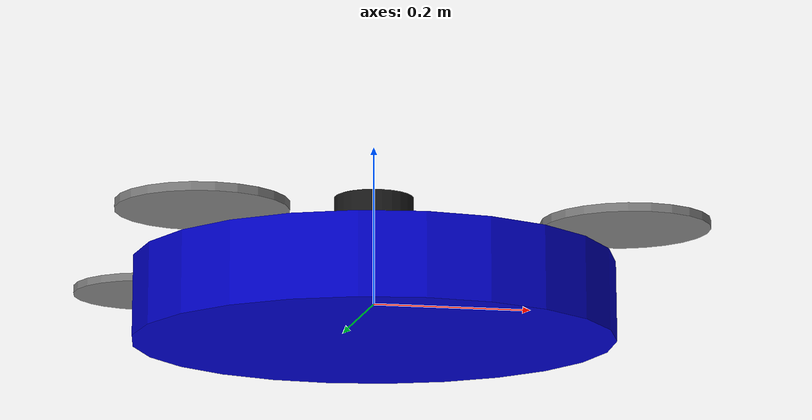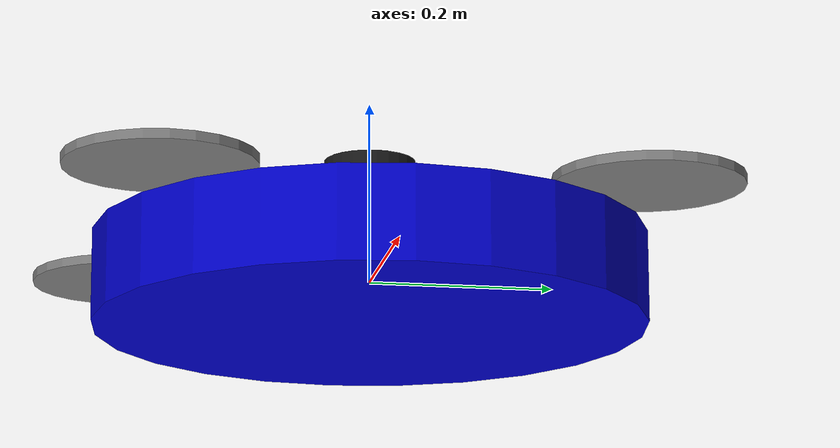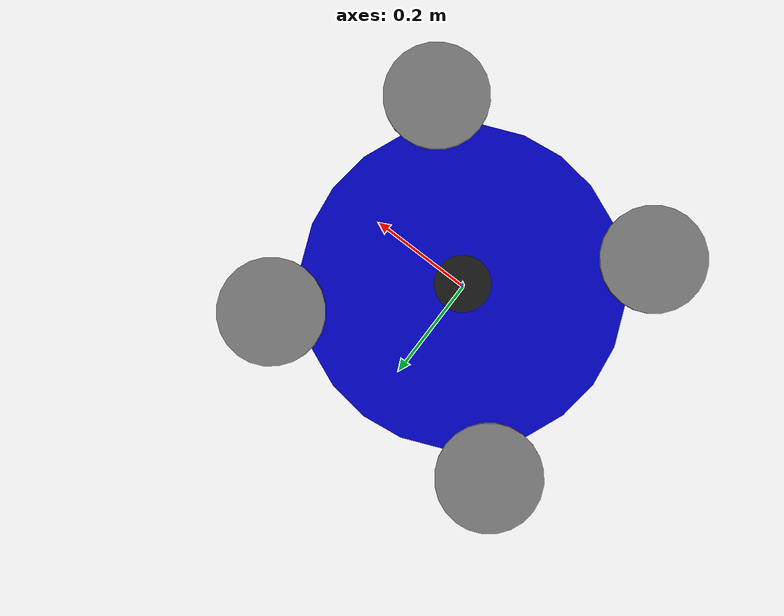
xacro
<?xml version="1.0"?>
<robot xmlns:xacro="http://www.ros.org/wiki/xacro" name="quadrotor">

  <!-- Properties -->
  <xacro:property name="body_radius" value="0.3"/>
  <xacro:property name="body_height" value="0.1"/>
  <xacro:property name="mass" value="1.5"/>
  <xacro:property name="arm_length" value="0.25"/>
  <xacro:property name="rotor_radius" value="0.1"/>
  <xacro:property name="rotor_height" value="0.01"/>

  <!-- Base Link -->
  <link name="base_link">
    <inertial>
      <origin xyz="0 0 0" rpy="0 0 0"/>
      <mass value="${mass}"/>
      <inertia ixx="0.01" ixy="0.0" ixz="0.0" iyy="0.01" iyz="0.0" izz="0.02"/>
    </inertial>

    <visual>
      <origin xyz="0 0 0" rpy="0 0 0"/>
      <geometry>
        <cylinder radius="${body_radius}" length="${body_height}"/>
      </geometry>
      <material name="blue">
        <color rgba="0 0 0.8 1"/>
      </material>
    </visual>

    <collision>
      <origin xyz="0 0 0" rpy="0 0 0"/>
      <geometry>
        <cylinder radius="${body_radius}" length="${body_height}"/>
      </geometry>
    </collision>
  </link>

  <!-- Rotor Macro -->
  <xacro:macro name="rotor" params="prefix x y">
    <link name="${prefix}_rotor">
      <inertial>
        <origin xyz="0 0 0" rpy="0 0 0"/>
        <mass value="0.05"/>
        <inertia ixx="0.0001" ixy="0.0" ixz="0.0" iyy="0.0001" iyz="0.0" izz="0.0002"/>
      </inertial>

      <visual>
        <origin xyz="0 0 0" rpy="0 0 0"/>
        <geometry>
          <cylinder radius="${rotor_radius}" length="${rotor_height}"/>
        </geometry>
        <material name="gray">
          <color rgba="0.5 0.5 0.5 1"/>
        </material>
      </visual>

      <collision>
        <origin xyz="0 0 0" rpy="0 0 0"/>
        <geometry>
          <cylinder radius="${rotor_radius}" length="${rotor_height}"/>
        </geometry>
      </collision>
    </link>

    <joint name="${prefix}_rotor_joint" type="continuous">
      <parent link="base_link"/>
      <child link="${prefix}_rotor"/>
      <origin xyz="${x} ${y} ${body_height/2 + rotor_height/2}" rpy="0 0 0"/>
      <axis xyz="0 0 1"/>
    </joint>
  </xacro:macro>

  <!-- Create four rotors -->
  <xacro:rotor prefix="front_right" x="${arm_length}" y="${-arm_length}"/>
  <xacro:rotor prefix="front_left" x="${arm_length}" y="${arm_length}"/>
  <xacro:rotor prefix="rear_right" x="${-arm_length}" y="${-arm_length}"/>
  <xacro:rotor prefix="rear_left" x="${-arm_length}" y="${arm_length}"/>

  <!-- LiDAR Link -->
  <link name="lidar_link">
    <inertial>
      <origin xyz="0 0 0" rpy="0 0 0"/>
      <mass value="0.83"/>
      <inertia ixx="0.001" ixy="0.0" ixz="0.0" iyy="0.001" iyz="0.0" izz="0.001"/>
    </inertial>

    <visual>
      <origin xyz="0 0 0" rpy="0 0 0"/>
      <geometry>
        <cylinder radius="0.05" length="0.07"/>
      </geometry>
      <material name="black">
        <color rgba="0.1 0.1 0.1 1"/>
      </material>
    </visual>

    <collision>
      <origin xyz="0 0 0" rpy="0 0 0"/>
      <geometry>
        <cylinder radius="0.05" length="0.07"/>
      </geometry>
    </collision>
  </link>

  <joint name="lidar_joint" type="fixed">
    <parent link="base_link"/>
    <child link="lidar_link"/>
    <origin xyz="0 0 ${body_height/2 + 0.05}" rpy="0 0 0"/>
  </joint>

  <!-- IMU Link -->
  <link name="imu_link">
    <inertial>
      <origin xyz="0 0 0" rpy="0 0 0"/>
      <mass value="0.01"/>
      <inertia ixx="0.00001" ixy="0.0" ixz="0.0" iyy="0.00001" iyz="0.0" izz="0.00001"/>
    </inertial>
  </link>

  <joint name="imu_joint" type="fixed">
    <parent link="base_link"/>
    <child link="imu_link"/>
    <origin xyz="0 0 0" rpy="0 0 0"/>
  </joint>

  <!-- Gazebo Plugins -->
  <gazebo reference="base_link">
    <material>Gazebo/Blue</material>
  </gazebo>

  <gazebo reference="front_right_rotor">
    <material>Gazebo/Gray</material>
  </gazebo>

  <gazebo reference="front_left_rotor">
    <material>Gazebo/Gray</material>
  </gazebo>

  <gazebo reference="rear_right_rotor">
    <material>Gazebo/Gray</material>
  </gazebo>

  <gazebo reference="rear_left_rotor">
    <material>Gazebo/Gray</material>
  </gazebo>

  <gazebo reference="lidar_link">
    <material>Gazebo/Black</material>
  </gazebo>

  <!-- Velodyne VLP-16 LiDAR Plugin -->
  <gazebo reference="lidar_link">
    <sensor name="velodyne_lidar" type="ray">
      <always_on>true</always_on>
      <visualize>true</visualize>
      <update_rate>10</update_rate>
      <ray>
        <scan>
          <horizontal>
            <samples>360</samples>
            <resolution>1.0</resolution>
            <min_angle>-3.14159</min_angle>
            <max_angle>3.14159</max_angle>
          </horizontal>
          <vertical>
            <samples>16</samples>
            <resolution>1.0</resolution>
            <min_angle>-0.261799</min_angle>
            <max_angle>0.261799</max_angle>
          </vertical>
        </scan>
        <range>
          <min>0.3</min>
          <max>100.0</max>
          <resolution>0.02</resolution>
        </range>
        <noise>
          <type>gaussian</type>
          <mean>0.0</mean>
          <stddev>0.01</stddev>
        </noise>
      </ray>
      <plugin name="velodyne_plugin" filename="libgazebo_ros_ray_sensor.so">
        <ros>
          <namespace>/drone1</namespace>
          <remapping>~/out:=lidar/points</remapping>
        </ros>
        <output_type>sensor_msgs/PointCloud2</output_type>
        <frame_name>lidar_link</frame_name>
      </plugin>
    </sensor>
  </gazebo>

  <!-- IMU Plugin -->
  <gazebo reference="imu_link">
    <sensor name="imu_sensor" type="imu">
      <always_on>true</always_on>
      <update_rate>100</update_rate>
      <visualize>false</visualize>
      <plugin filename="libgazebo_ros_imu_sensor.so" name="imu_plugin">
        <ros>
          <namespace>/drone1</namespace>
          <remapping>~/out:=imu</remapping>
        </ros>
        <initial_orientation_as_reference>false</initial_orientation_as_reference>
      </plugin>
    </sensor>
  </gazebo>

  <!-- Model Control Plugin -->
  <gazebo>
    <plugin name="model_control" filename="libgazebo_ros_planar_move.so">
      <ros>
        <namespace>/drone1</namespace>
        <remapping>cmd_vel:=cmd_vel</remapping>
        <remapping>odom:=odom</remapping>
      </ros>
      <update_rate>100</update_rate>
      <publish_rate>10</publish_rate>
      <publish_odom>true</publish_odom>
      <publish_odom_tf>true</publish_odom_tf>
      <odometry_frame>odom</odometry_frame>
      <robot_base_frame>base_link</robot_base_frame>
      <covariance_x>0.0001</covariance_x>
      <covariance_y>0.0001</covariance_y>
      <covariance_yaw>0.01</covariance_yaw>
    </plugin>
  </gazebo>

</robot>
